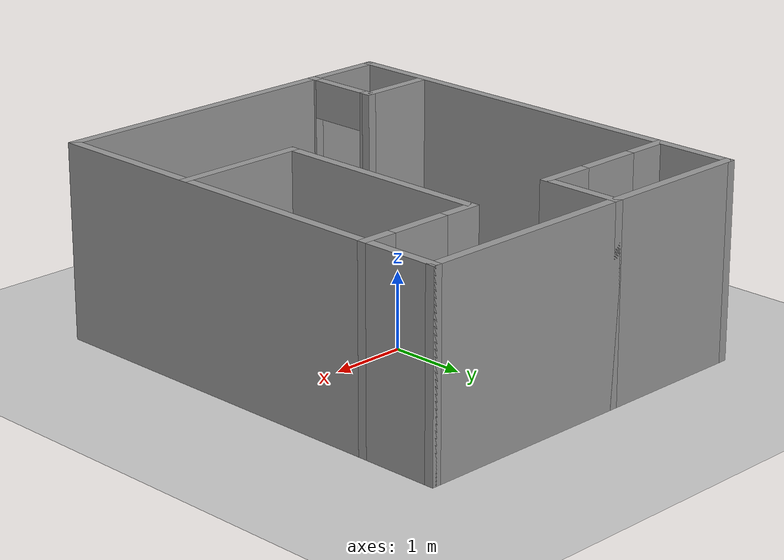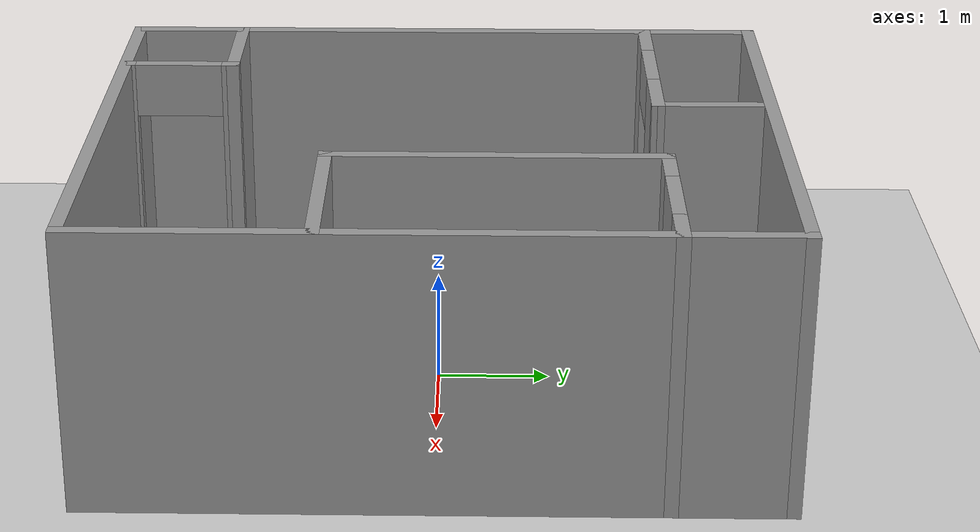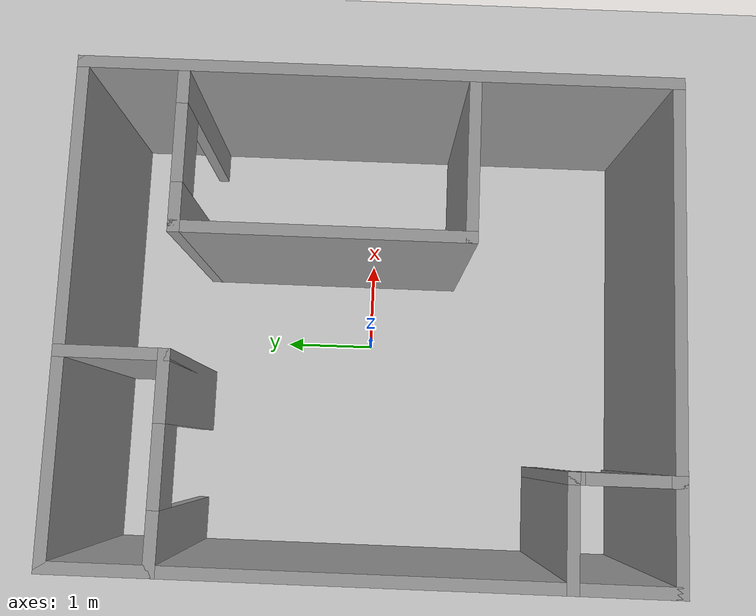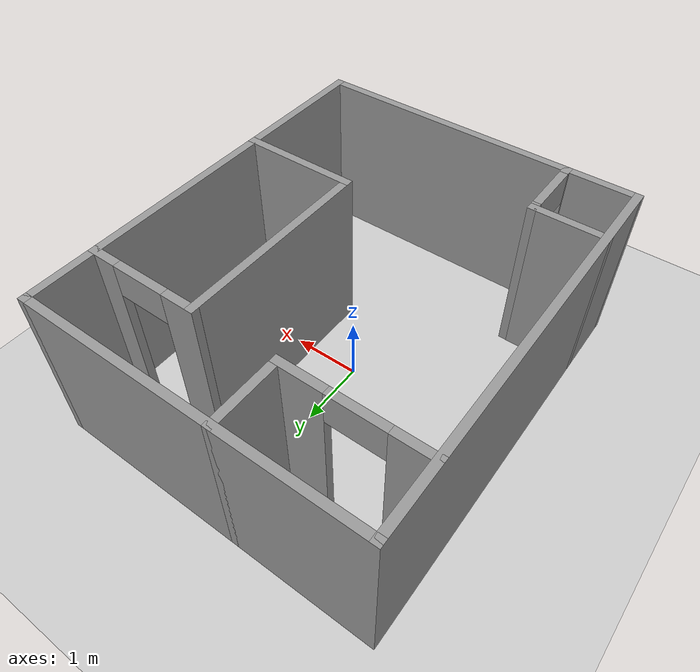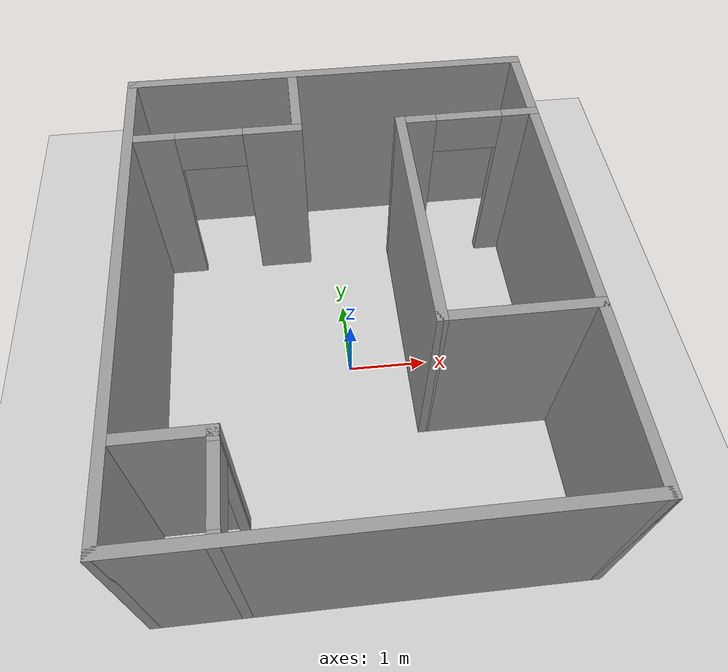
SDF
<sdf version="1.7">
 <world name="default">
  <light name="sun" type="directional">
   <pose>0 0 10 0 -0 0</pose>
   <diffuse>0.8 0.8 0.8 1</diffuse>
   <specular>0.2 0.2 0.2 1</specular>
   <attenuation>
    <range>1000</range>
    <constant>0.9</constant>
    <linear>0.01</linear>
    <quadratic>0.001</quadratic>
   </attenuation>
   <direction>-0.5 0.1 -0.9</direction>
   <spot><inner_angle>0</inner_angle><outer_angle>0</outer_angle><falloff>0</falloff></spot>
  </light>
  <model name="ground_plane">
   <static>1</static>
   <link name="link">
    <collision name="collision">
     <geometry><plane><normal>0 0 1</normal><size>100 100</size></plane></geometry>
     <surface>
      <contact><collide_bitmask>65535</collide_bitmask></contact>
      <friction><ode><mu>100</mu><mu2>50</mu2></ode></friction>
     </surface>
    </collision>
    <visual name="visual">
     <cast_shadows>0</cast_shadows>
     <geometry><plane><normal>0 0 1</normal><size>100 100</size></plane></geometry>
     <material>
      <script><uri>file://media/materials/scripts/gazebo.material</uri><name>Gazebo/Grey</name></script>
     </material>
    </visual>
   </link>
  </model>
  <gravity>0 0 -9.8</gravity>
  <magnetic_field>6e-06 2.3e-05 -4.2e-05</magnetic_field>
  <atmosphere type="adiabatic"/>
  <physics type="ode">
   <max_step_size>0.001</max_step_size>
   <real_time_factor>1</real_time_factor>
   <real_time_update_rate>1000</real_time_update_rate>
  </physics>
  <scene><ambient>0.4 0.4 0.4 1</ambient><background>0.7 0.7 0.7 1</background><shadows>1</shadows></scene>
  <spherical_coordinates>
   <surface_model>EARTH_WGS84</surface_model>
   <latitude_deg>0</latitude_deg>
   <longitude_deg>0</longitude_deg>
   <elevation>0</elevation>
   <heading_deg>0</heading_deg>
  </spherical_coordinates>
  <model name="ros_1100915">
   <link name="Wall_0">
    <collision name="Wall_0_Collision">
     <geometry><box><size>5 0.12 2.5</size></box></geometry>
     <pose>0 0 1.25 0 -0 0</pose>
    </collision>
    <visual name="Wall_0_Visual">
     <pose>0 0 1.25 0 -0 0</pose>
     <geometry><box><size>5 0.12 2.5</size></box></geometry>
     <material>
      <script><uri>file://media/materials/scripts/gazebo.material</uri><name>Gazebo/Grey</name></script>
      <ambient>1 1 1 1</ambient>
     </material>
     <meta><layer>0</layer></meta>
    </visual>
    <pose>0 -2.94 0 0 -0 0</pose>
   </link>
   <link name="Wall_11">
    <pose>1.6245 1.94 0 0 -0 3.14159</pose>
    <visual name="Wall_11_Visual_0">
     <pose>-0.648655 0 1.25 0 -0 0</pose>
     <geometry><box><size>0.45369 0.12 2.5</size></box></geometry>
     <material>
      <script><uri>file://media/materials/scripts/gazebo.material</uri><name>Gazebo/Grey</name></script>
      <ambient>1 1 1 1</ambient>
     </material>
     <meta><layer>0</layer></meta>
    </visual>
    <collision name="Wall_11_Collision_0">
     <geometry><box><size>0.45369 0.12 2.5</size></box></geometry>
     <pose>-0.648655 0 1.25 0 -0 0</pose>
    </collision>
    <visual name="Wall_11_Visual_1">
     <pose>0.626845 0 1.25 0 -0 0</pose>
     <geometry><box><size>0.49731 0.12 2.5</size></box></geometry>
     <material>
      <script><uri>file://media/materials/scripts/gazebo.material</uri><name>Gazebo/Grey</name></script>
      <ambient>1 1 1 1</ambient>
     </material>
     <meta><layer>0</layer></meta>
    </visual>
    <collision name="Wall_11_Collision_1">
     <geometry><box><size>0.49731 0.12 2.5</size></box></geometry>
     <pose>0.626845 0 1.25 0 -0 0</pose>
    </collision>
    <visual name="Wall_11_Visual_2">
     <pose>-0.02181 0 2.25 0 -0 0</pose>
     <geometry><box><size>0.8 0.12 0.5</size></box></geometry>
     <material>
      <script><uri>file://media/materials/scripts/gazebo.material</uri><name>Gazebo/Grey</name></script>
      <ambient>1 1 1 1</ambient>
     </material>
     <meta><layer>0</layer></meta>
    </visual>
    <collision name="Wall_11_Collision_2">
     <geometry><box><size>0.8 0.12 0.5</size></box></geometry>
     <pose>-0.02181 0 2.25 0 -0 0</pose>
    </collision>
   </link>
   <link name="Wall_12">
    <collision name="Wall_12_Collision">
     <geometry><box><size>3 0.12 2.5</size></box></geometry>
     <pose>0 0 1.25 0 -0 0</pose>
    </collision>
    <visual name="Wall_12_Visual">
     <pose>0 0 1.25 0 -0 0</pose>
     <geometry><box><size>3 0.12 2.5</size></box></geometry>
     <material>
      <script><uri>file://media/materials/scripts/gazebo.material</uri><name>Gazebo/Grey</name></script>
      <ambient>1 1 1 1</ambient>
     </material>
     <meta><layer>0</layer></meta>
    </visual>
    <pose>0.809 0.5 0 0 -0 -1.5708</pose>
   </link>
   <link name="Wall_13">
    <collision name="Wall_13_Collision">
     <geometry><box><size>1.751 0.12 2.5</size></box></geometry>
     <pose>0 0 1.25 0 -0 0</pose>
    </collision>
    <visual name="Wall_13_Visual">
     <pose>0 0 1.25 0 -0 0</pose>
     <geometry><box><size>1.751 0.12 2.5</size></box></geometry>
     <material>
      <script><uri>file://media/materials/scripts/gazebo.material</uri><name>Gazebo/Grey</name></script>
      <ambient>1 1 1 1</ambient>
     </material>
     <meta><layer>0</layer></meta>
    </visual>
    <pose>1.6245 -0.94 0 0 -0 0</pose>
   </link>
   <link name="Wall_15">
    <pose>-1.44 1.94 0 0 -0 0</pose>
    <visual name="Wall_15_Visual_0">
     <pose>-0.754766 0 1.25 0 -0 0</pose>
     <geometry><box><size>0.610467 0.12 2.5</size></box></geometry>
     <material>
      <script><uri>file://media/materials/scripts/gazebo.material</uri><name>Gazebo/Grey</name></script>
      <ambient>1 1 1 1</ambient>
     </material>
     <meta><layer>0</layer></meta>
    </visual>
    <collision name="Wall_15_Collision_0">
     <geometry><box><size>0.610467 0.12 2.5</size></box></geometry>
     <pose>-0.754766 0 1.25 0 -0 0</pose>
    </collision>
    <visual name="Wall_15_Visual_1">
     <pose>0.705234 0 1.25 0 -0 0</pose>
     <geometry><box><size>0.709533 0.12 2.5</size></box></geometry>
     <material>
      <script><uri>file://media/materials/scripts/gazebo.material</uri><name>Gazebo/Grey</name></script>
      <ambient>1 1 1 1</ambient>
     </material>
     <meta><layer>0</layer></meta>
    </visual>
    <collision name="Wall_15_Collision_1">
     <geometry><box><size>0.709533 0.12 2.5</size></box></geometry>
     <pose>0.705234 0 1.25 0 -0 0</pose>
    </collision>
    <visual name="Wall_15_Visual_2">
     <pose>-0.049533 0 2.25 0 -0 0</pose>
     <geometry><box><size>0.8 0.12 0.5</size></box></geometry>
     <material>
      <script><uri>file://media/materials/scripts/gazebo.material</uri><name>Gazebo/Grey</name></script>
      <ambient>1 1 1 1</ambient>
     </material>
     <meta><layer>0</layer></meta>
    </visual>
    <collision name="Wall_15_Collision_2">
     <geometry><box><size>0.8 0.12 0.5</size></box></geometry>
     <pose>-0.049533 0 2.25 0 -0 0</pose>
    </collision>
   </link>
   <link name="Wall_16">
    <collision name="Wall_16_Collision">
     <geometry><box><size>1.12 0.12 2.5</size></box></geometry>
     <pose>0 0 1.25 0 -0 0</pose>
    </collision>
    <visual name="Wall_16_Visual">
     <pose>0 0 1.25 0 -0 0</pose>
     <geometry><box><size>1.12 0.12 2.5</size></box></geometry>
     <material>
      <script><uri>file://media/materials/scripts/gazebo.material</uri><name>Gazebo/Grey</name></script>
      <ambient>1 1 1 1</ambient>
     </material>
     <meta><layer>0</layer></meta>
    </visual>
    <pose>-0.44 2.44 0 0 -0 1.5708</pose>
   </link>
   <link name="Wall_2">
    <collision name="Wall_2_Collision">
     <geometry><box><size>6 0.12 2.5</size></box></geometry>
     <pose>0 0 1.25 0 -0 0</pose>
    </collision>
    <visual name="Wall_2_Visual">
     <pose>0 0 1.25 0 -0 0</pose>
     <geometry><box><size>6 0.12 2.5</size></box></geometry>
     <material>
      <script><uri>file://media/materials/scripts/gazebo.material</uri><name>Gazebo/Grey</name></script>
      <ambient>1 1 1 1</ambient>
     </material>
     <meta><layer>0</layer></meta>
    </visual>
    <pose>-2.44 0 0 0 -0 1.5708</pose>
   </link>
   <link name="Wall_4">
    <collision name="Wall_4_Collision">
     <geometry><box><size>6 0.12 2.5</size></box></geometry>
     <pose>0 0 1.25 0 -0 0</pose>
    </collision>
    <visual name="Wall_4_Visual">
     <pose>0 0 1.25 0 -0 0</pose>
     <geometry><box><size>6 0.12 2.5</size></box></geometry>
     <material>
      <script><uri>file://media/materials/scripts/gazebo.material</uri><name>Gazebo/Grey</name></script>
      <ambient>1 1 1 1</ambient>
     </material>
     <meta><layer>0</layer></meta>
    </visual>
    <pose>2.44 0 0 0 -0 1.5708</pose>
   </link>
   <link name="Wall_6">
    <collision name="Wall_6_Collision">
     <geometry><box><size>5 0.12 2.5</size></box></geometry>
     <pose>0 0 1.25 0 -0 0</pose>
    </collision>
    <visual name="Wall_6_Visual">
     <pose>0 0 1.25 0 -0 0</pose>
     <geometry><box><size>5 0.12 2.5</size></box></geometry>
     <material>
      <script><uri>file://media/materials/scripts/gazebo.material</uri><name>Gazebo/Grey</name></script>
      <ambient>1 1 1 1</ambient>
     </material>
     <meta><layer>0</layer></meta>
    </visual>
    <pose>0 2.94 0 0 -0 0</pose>
   </link>
   <link name="Wall_8">
    <pose>-1.44 -2.44 0 0 -0 1.5708</pose>
    <visual name="Wall_8_Visual_0">
     <pose>-0.482798 0 1.25 0 -0 0</pose>
     <geometry><box><size>0.154405 0.12 2.5</size></box></geometry>
     <material>
      <script><uri>file://media/materials/scripts/gazebo.material</uri><name>Gazebo/Grey</name></script>
      <ambient>1 1 1 1</ambient>
     </material>
     <meta><layer>0</layer></meta>
    </visual>
    <collision name="Wall_8_Collision_0">
     <geometry><box><size>0.154405 0.12 2.5</size></box></geometry>
     <pose>-0.482798 0 1.25 0 -0 0</pose>
    </collision>
    <visual name="Wall_8_Visual_1">
     <pose>0.477202 0 1.25 0 -0 0</pose>
     <geometry><box><size>0.165595 0.12 2.5</size></box></geometry>
     <material>
      <script><uri>file://media/materials/scripts/gazebo.material</uri><name>Gazebo/Grey</name></script>
      <ambient>1 1 1 1</ambient>
     </material>
     <meta><layer>0</layer></meta>
    </visual>
    <collision name="Wall_8_Collision_1">
     <geometry><box><size>0.165595 0.12 2.5</size></box></geometry>
     <pose>0.477202 0 1.25 0 -0 0</pose>
    </collision>
    <visual name="Wall_8_Visual_2">
     <pose>-0.005595 0 2.25 0 -0 0</pose>
     <geometry><box><size>0.8 0.12 0.5</size></box></geometry>
     <material>
      <script><uri>file://media/materials/scripts/gazebo.material</uri><name>Gazebo/Grey</name></script>
      <ambient>1 1 1 1</ambient>
     </material>
     <meta><layer>0</layer></meta>
    </visual>
    <collision name="Wall_8_Collision_2">
     <geometry><box><size>0.8 0.12 0.5</size></box></geometry>
     <pose>-0.005595 0 2.25 0 -0 0</pose>
    </collision>
   </link>
   <link name="Wall_9">
    <collision name="Wall_9_Collision">
     <geometry><box><size>1.12 0.12 2.5</size></box></geometry>
     <pose>0 0 1.25 0 -0 0</pose>
    </collision>
    <visual name="Wall_9_Visual">
     <pose>0 0 1.25 0 -0 0</pose>
     <geometry><box><size>1.12 0.12 2.5</size></box></geometry>
     <material>
      <script><uri>file://media/materials/scripts/gazebo.material</uri><name>Gazebo/Grey</name></script>
      <ambient>1 1 1 1</ambient>
     </material>
     <meta><layer>0</layer></meta>
    </visual>
    <pose>-1.94 -1.94 0 0 -0 3.14159</pose>
   </link>
   <static>1</static>
  </model>
 </world>
</sdf>
